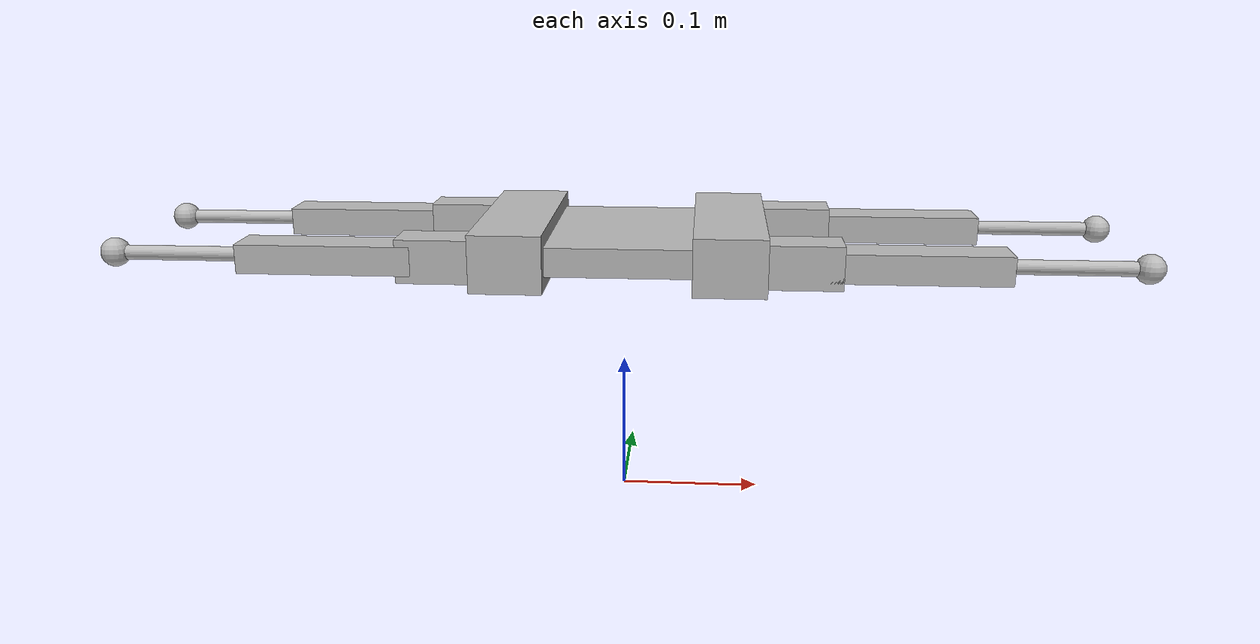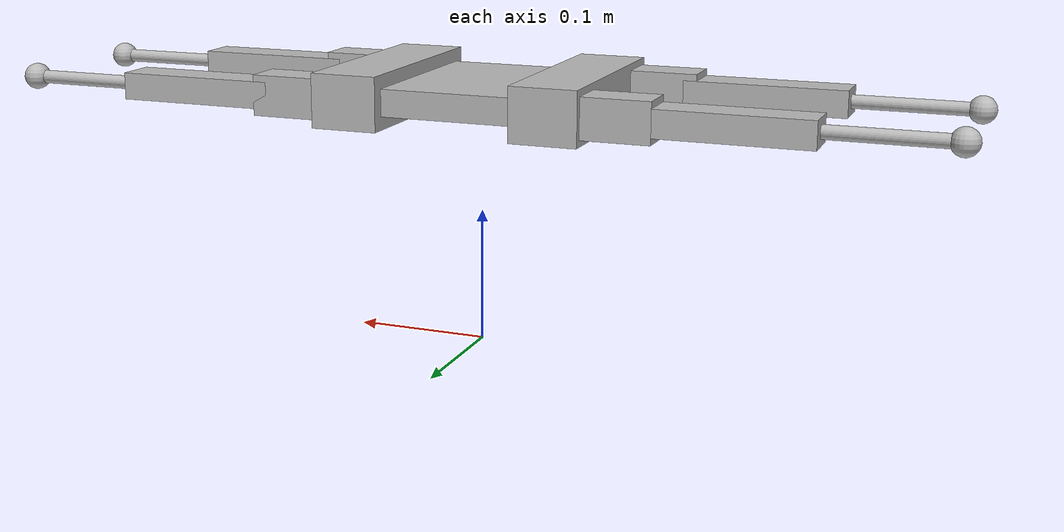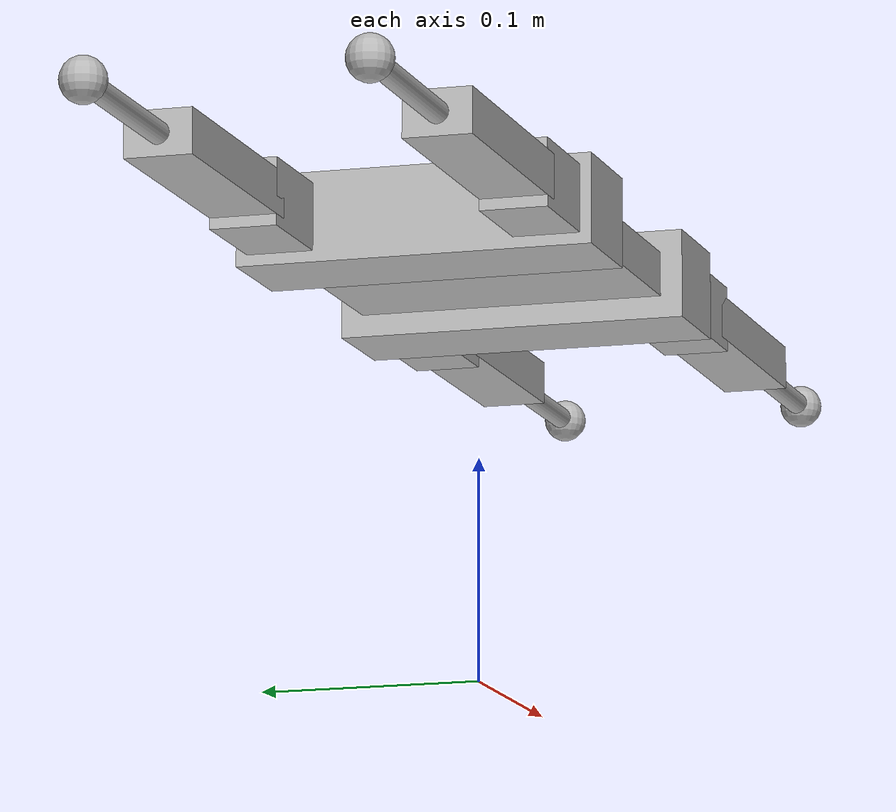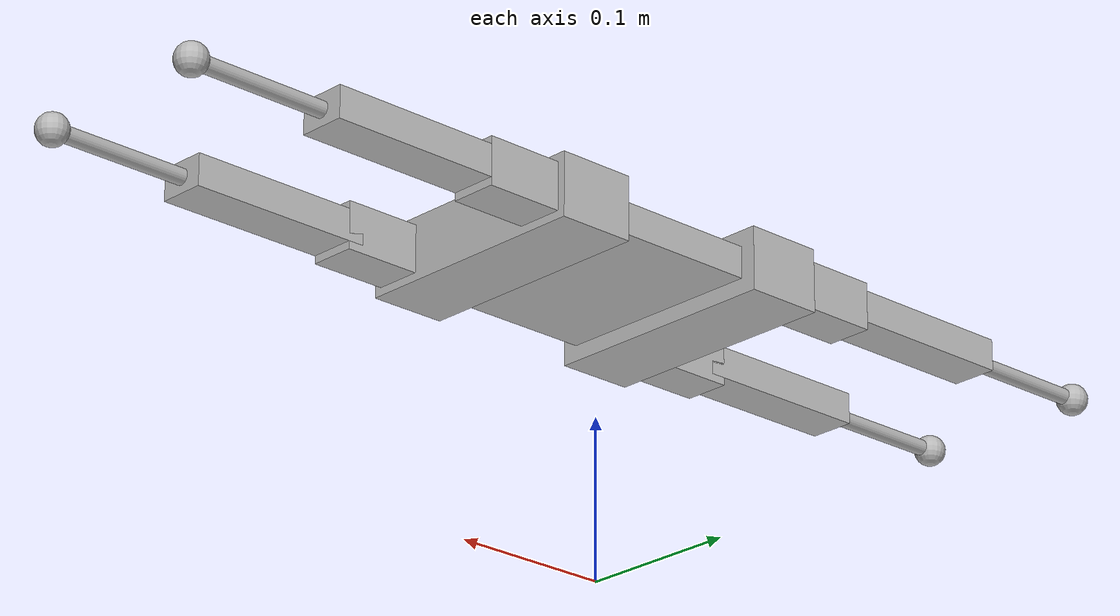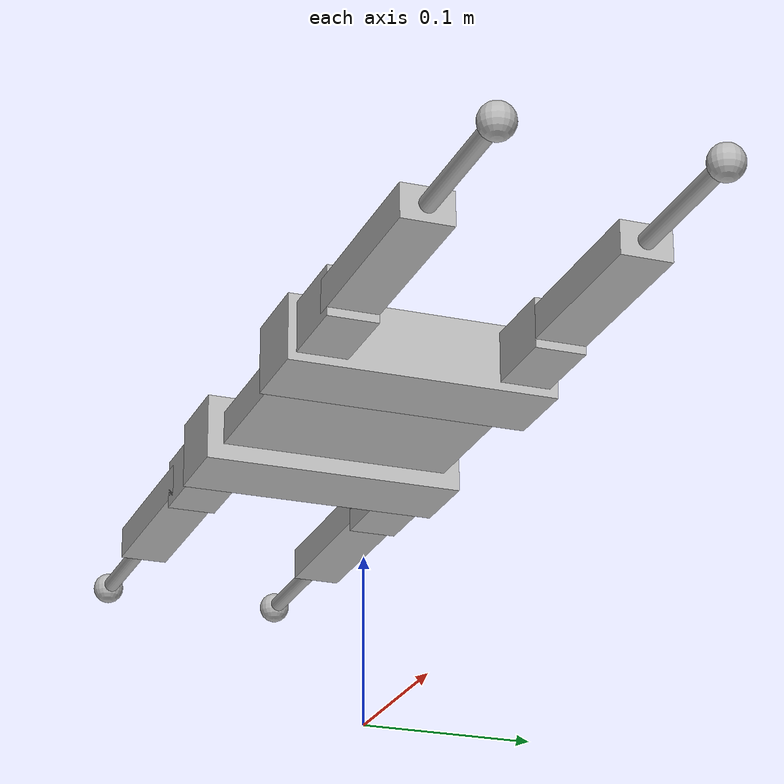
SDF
<?xml version="1.0" ?>
<sdf version='1.5'>
  <model name='ROBOT'>
  <plugin name="PacerPlugin" filename="/usr/local/lib/libPacerGazeboPlugin.so"/>
  <pose>0 0 0.19 0 -0 0</pose>
    <link name='BODY0'>
      <pose>0 0 0 0 -0 0</pose>
      <inertial>
        <mass>3.5</mass>
        <inertia>
          <ixx>0.01</ixx>
          <ixy>0.0</ixy>
          <ixz>-0.0</ixz>
          <iyy>0.01</iyy>
          <iyz>-0.0</iyz>
          <izz>0.01</izz>
        </inertia>
      </inertial>

      <visual name='BODY1_visual'>
      <pose>0.075 0 0 0 -0 0</pose>
        <geometry>
          <box>
            <size>0.05 0.16 0.04</size>
          </box>
        </geometry>
      </visual>
      <visual name='BODY0_visual'>
        <geometry>
          <box>
            <size>0.1 0.14 0.02</size>
          </box>
        </geometry>
      </visual>
      <visual name='BODYN_visual'>
      <pose>-0.075 0 0 0 -0 0</pose>
        <geometry>
          <box>
            <size>0.05 0.16 0.04</size>
          </box>
        </geometry>
      </visual>

      <collision name='BODY0_collision'>
        <geometry>
          <box>
            <size>0.1 0.14 0.02</size>
          </box>
        </geometry>
      </collision>

    </link>

<!-- =============================== LF leg =============================== -->
    <joint name='LF_X_1' type='revolute'>
      <pose>-0.025 0.0 0 0 0 0</pose>
      <parent>BODY0</parent>
      <child>LF_LEG_1</child>
      <axis>
        <xyz>1 0 0</xyz>
        <limit>
          <lower>-1e+16</lower>
          <upper>1e+16</upper>
        </limit>
        <dynamics/>
      </axis>
    </joint>

    <link name='LF_LEG_1'>
      <pose>0.125 0.06 0 0 0 0</pose>
      <inertial>
        <mass>0.10</mass>
        <inertia>
          <ixx>0.0001</ixx>
          <ixy>0.0</ixy>
          <ixz>-0.0</ixz>
          <iyy>0.0001</iyy>
          <iyz>-0.0</iyz>
          <izz>0.0001</izz>
        </inertia>
      </inertial>

      <visual name='leg1_visual'>
        <geometry>
          <box>
            <size>0.05 0.03 0.03</size>
          </box>
        </geometry>
      </visual>

    </link>

    <joint name='LF_Y_2' type='revolute'>
      <pose>-0.05 0 0 0 0 0</pose>
      <parent>LF_LEG_1</parent>
      <child>LF_LEG_2</child>
      <axis>
        <xyz>0 1 0</xyz>
        <limit>
          <lower>-1e+16</lower>
          <upper>1e+16</upper>
        </limit>
        <dynamics/>
      </axis>

    </joint>

    <link name='LF_LEG_2'>
      <pose>0.2 0.06 0 0 0 0</pose>
      <inertial>
        <mass>0.10</mass>
        <inertia>
          <ixx>0.0001</ixx>
          <ixy>0.0</ixy>
          <ixz>-0.0</ixz>
          <iyy>0.0001</iyy>
          <iyz>-0.0</iyz>
          <izz>0.0001</izz>
        </inertia>
      </inertial>

      <visual name='leg2_visual'>
        <geometry>
          <box>
            <size>0.12 0.03 0.02</size>
          </box>
        </geometry>
      </visual>

    </link>

    <joint name='LF_Y_3' type='revolute'>
      <pose>-0.05 0 0 0 0 0</pose>
      <parent>LF_LEG_2</parent>
      <child>LF_LEG_3</child>
      <axis>
        <xyz>0 1 0</xyz>
        <limit>
          <lower>-1e+16</lower>
          <upper>1e+16</upper>
        </limit>
        <dynamics/>
      </axis>

    </joint>

    <link name='LF_LEG_3'>
      <pose>0.3 0.06 0 0 0 0</pose>
      <inertial>
        <mass>0.10</mass>
        <inertia>
          <ixx>0.0001</ixx>
          <ixy>0.0</ixy>
          <ixz>-0.0</ixz>
          <iyy>0.0001</iyy>
          <iyz>-0.0</iyz>
          <izz>0.0001</izz>
        </inertia>
      </inertial>

      <visual name='leg3_visual'>
        <pose>0 0 0 0 1.5708 0</pose>
        <geometry>
          <cylinder>
            <length>0.1</length>
            <radius>0.005</radius>
          </cylinder>
        </geometry>
      </visual>
    </link>

    <joint name='LF_ANKLE4' type='revolute'>
      <pose>0 0 0 0 0 0</pose>
      <parent>LF_LEG_3</parent>
      <child>LF_FOOT</child>
      <axis>
        <xyz>1 0 0</xyz>
        <limit>
          <lower>0</lower>
          <upper>0</upper>
        </limit>
        <dynamics/>
      </axis>
    </joint>

    <link name='LF_FOOT'>
      <pose>0.35 0.06 0 0 0 0</pose>
      <inertial>
        <mass>0.01</mass>
        <inertia>
          <ixx>0.0001</ixx>
          <ixy>0.0</ixy>
          <ixz>-0.0</ixz>
          <iyy>0.0001</iyy>
          <iyz>-0.0</iyz>
          <izz>0.0001</izz>
        </inertia>
      </inertial>

      <visual name='LF_FOOT_visual'>
        <pose>0 0 0 0 0 0</pose>
        <geometry>
          <sphere>
            <radius>0.01</radius>
          </sphere>
        </geometry>
      </visual>

      <collision name='LF_FOOT_collision'>
        <pose>0 0 0 0 0 0</pose>
        <geometry>
          <sphere>
            <radius>0.01</radius>
          </sphere>
        </geometry>
      </collision>

      <sensor name='LF_FOOT_contact' type='contact'>
        <contact>
          <collision>LF_FOOT_collision</collision>
        </contact>
        <update_rate>1000</update_rate>
      </sensor>
    </link>

<!-- =============================== RF leg =============================== -->
    <joint name='RF_X_1' type='revolute'>
      <pose>-0.025 0 0 0 0 0</pose>
      <parent>BODY0</parent>
      <child>RF_LEG_1</child>
      <axis>
        <xyz>1 0 0</xyz>
        <limit>
          <lower>-1e+16</lower>
          <upper>1e+16</upper>
        </limit>
        <dynamics/>
      </axis>

    </joint>

    <link name='RF_LEG_1'>
      <pose>0.125 -0.06 0 0 0 0</pose>
      <inertial>
        <mass>0.10</mass>
        <inertia>
          <ixx>0.0001</ixx>
          <ixy>0.0</ixy>
          <ixz>-0.0</ixz>
          <iyy>0.0001</iyy>
          <iyz>-0.0</iyz>
          <izz>0.0001</izz>
        </inertia>
      </inertial>

      <visual name='leg1_visual'>
        <geometry>
          <box>
            <size>0.05 0.03 0.03</size>
          </box>
        </geometry>
      </visual>
    </link>

    <joint name='RF_Y_2' type='revolute'>
      <pose>-0.05 0 0 0 0 0</pose>
      <parent>RF_LEG_1</parent>
      <child>RF_LEG_2</child>
      <axis>
        <xyz>0 -1 0</xyz>
        <limit>
          <lower>-1e+16</lower>
          <upper>1e+16</upper>
        </limit>
        <dynamics/>
      </axis>
    </joint>

    <link name='RF_LEG_2'>
      <pose>0.2 -0.06 0 0 0 0</pose>
      <inertial>
        <mass>0.10</mass>
        <inertia>
          <ixx>0.0001</ixx>
          <ixy>0.0</ixy>
          <ixz>-0.0</ixz>
          <iyy>0.0001</iyy>
          <iyz>-0.0</iyz>
          <izz>0.0001</izz>
        </inertia>
      </inertial>

      <visual name='leg2_visual'>
        <geometry>
          <box>
            <size>0.12 0.03 0.02</size>
          </box>
        </geometry>
      </visual>
    </link>

    <joint name='RF_Y_3' type='revolute'>
      <pose>-0.05 0 0 0 0 0</pose>
      <parent>RF_LEG_2</parent>
      <child>RF_LEG_3</child>
      <axis>
        <xyz>0 -1 0</xyz>
        <limit>
          <lower>-1e+16</lower>
          <upper>1e+16</upper>
        </limit>
        <dynamics/>
      </axis>
    </joint>

    <link name='RF_LEG_3'>
      <pose>0.3 -0.06 0 0 0 0</pose>
      <inertial>
        <mass>0.10</mass>
        <inertia>
          <ixx>0.0001</ixx>
          <ixy>0.0</ixy>
          <ixz>-0.0</ixz>
          <iyy>0.0001</iyy>
          <iyz>-0.0</iyz>
          <izz>0.0001</izz>
        </inertia>
      </inertial>

      <visual name='leg3_visual'>
        <pose>0 0 0 0 1.5708 0</pose>
        <geometry>
          <cylinder>
            <length>0.1</length>
            <radius>0.005</radius>
          </cylinder>
        </geometry>
      </visual>
    </link>

    <joint name='RF_ANKLE4' type='revolute'>
      <pose>0 0 0 0 0 0</pose>
      <parent>RF_LEG_3</parent>
      <child>RF_FOOT</child>
      <axis>
        <xyz>1 0 0</xyz>
        <limit>
          <lower>0</lower>
          <upper>0</upper>
        </limit>
        <dynamics/>
      </axis>
    </joint>

    <link name='RF_FOOT'>
      <pose>0.35 -0.06 0 0 0 0</pose>
      <inertial>
        <mass>0.01</mass>
        <inertia>
          <ixx>0.0001</ixx>
          <ixy>0.0</ixy>
          <ixz>-0.0</ixz>
          <iyy>0.0001</iyy>
          <iyz>-0.0</iyz>
          <izz>0.0001</izz>
        </inertia>
      </inertial>

      <visual name='RF_FOOT_visual'>
        <pose>0 0 0 0 0 0</pose>
        <geometry>
          <sphere>
            <radius>0.01</radius>
          </sphere>
        </geometry>
      </visual>

      <collision name='RF_FOOT_collision'>
        <pose>0 0 0 0 0 0</pose>
        <geometry>
          <sphere>
            <radius>0.01</radius>
          </sphere>
        </geometry>
      </collision>

      <sensor name='RF_FOOT_contact' type='contact'>
        <contact>
          <collision>RF_FOOT_collision</collision>
        </contact>
        <update_rate>1000</update_rate>
      </sensor>
    </link>

<!-- =============================== LH leg =============================== -->
    <joint name='LH_X_1' type='revolute'>
      <pose>0.025 0 0 0 0 0</pose>
      <parent>BODY0</parent>
      <child>LH_LEG_1</child>
      <axis>
        <xyz>-1 0 0</xyz>
        <limit>
          <lower>-1e+16</lower>
          <upper>1e+16</upper>
        </limit>
        <dynamics/>
      </axis>

    </joint>

    <link name='LH_LEG_1'>
      <pose>-0.125 0.06 0 0 0 0</pose>
      <inertial>
        <mass>0.10</mass>
        <inertia>
          <ixx>0.0001</ixx>
          <ixy>0.0</ixy>
          <ixz>-0.0</ixz>
          <iyy>0.0001</iyy>
          <iyz>-0.0</iyz>
          <izz>0.0001</izz>
        </inertia>
      </inertial>

      <visual name='leg1_visual'>
        <geometry>
          <box>
            <size>0.05 0.03 0.03</size>
          </box>
        </geometry>
      </visual>
    </link>

    <joint name='LH_Y_2' type='revolute'>
      <pose>0.05 0 0 0 0 0</pose>
      <parent>LH_LEG_1</parent>
      <child>LH_LEG_2</child>
      <axis>
        <xyz>0 1 0</xyz>
        <limit>
          <lower>-1e+16</lower>
          <upper>1e+16</upper>
        </limit>
        <dynamics/>
      </axis>

    </joint>

    <link name='LH_LEG_2'>
      <pose>-0.2 0.06 0 0 0 0</pose>
      <inertial>
        <mass>0.10</mass>
        <inertia>
          <ixx>0.0001</ixx>
          <ixy>0.0</ixy>
          <ixz>-0.0</ixz>
          <iyy>0.0001</iyy>
          <iyz>-0.0</iyz>
          <izz>0.0001</izz>
        </inertia>
      </inertial>

      <visual name='leg2_visual'>
        <geometry>
          <box>
            <size>0.12 0.03 0.02</size>
          </box>
        </geometry>
      </visual>

    </link>

    <joint name='LH_Y_3' type='revolute'>
      <pose>0.05 0 0 0 0 0</pose>
      <parent>LH_LEG_2</parent>
      <child>LH_LEG_3</child>
      <axis>
        <xyz>0 1 0</xyz>
        <limit>
          <lower>-1e+16</lower>
          <upper>1e+16</upper>
        </limit>
        <dynamics/>
      </axis>

    </joint>

    <link name='LH_LEG_3'>
      <pose>-0.3 0.06 0 0 0 0</pose>
      <inertial>
        <mass>0.10</mass>
        <inertia>
          <ixx>0.0001</ixx>
          <ixy>0.0</ixy>
          <ixz>-0.0</ixz>
          <iyy>0.0001</iyy>
          <iyz>-0.0</iyz>
          <izz>0.0001</izz>
        </inertia>
      </inertial>

      <visual name='leg3_visual'>
        <pose>0 0 0 0 1.5708 0</pose>
        <geometry>
          <cylinder>
            <length>0.1</length>
            <radius>0.005</radius>
          </cylinder>
        </geometry>
      </visual>
    </link>
    <joint name='LH_ANKLE4' type='revolute'>
      <pose>0 0 0 0 0 0</pose>
      <parent>LH_LEG_3</parent>
      <child>LH_FOOT</child>
      <axis>
        <xyz>1 0 0</xyz>
        <limit>
          <lower>0</lower>
          <upper>0</upper>
        </limit>
        <dynamics/>
      </axis>
    </joint>

    <link name='LH_FOOT'>
      <pose>-0.35 0.06 0 0 0 0</pose>
      <inertial>
        <mass>0.01</mass>
        <inertia>
          <ixx>0.0001</ixx>
          <ixy>0.0</ixy>
          <ixz>-0.0</ixz>
          <iyy>0.0001</iyy>
          <iyz>-0.0</iyz>
          <izz>0.0001</izz>
        </inertia>
      </inertial>

      <visual name='LH_FOOT_visual'>
        <pose>0 0 0 0 0 0</pose>
        <geometry>
          <sphere>
            <radius>0.01</radius>
          </sphere>
        </geometry>
      </visual>

      <collision name='LH_FOOT_collision'>
        <pose>0 0 0 0 0 0</pose>
        <geometry>
          <sphere>
            <radius>0.01</radius>
          </sphere>
        </geometry>
      </collision>

      <sensor name='LH_FOOT_contact' type='contact'>
        <contact>
          <collision>LH_FOOT_collision</collision>
        </contact>
        <update_rate>1000</update_rate>
      </sensor>
    </link>

<!-- =============================== RH leg =============================== -->
    <joint name='RH_X_1' type='revolute'>
      <pose>0.025 0 0 0 0 0</pose>
      <parent>BODY0</parent>
      <child>RH_LEG_1</child>
      <axis>
        <xyz>-1 0 0</xyz>
        <limit>
          <lower>-1e+16</lower>
          <upper>1e+16</upper>
        </limit>
        <dynamics/>
      </axis>
    </joint>

    <link name='RH_LEG_1'>
      <pose>-0.125 -0.06 0 0 0 0</pose>
      <inertial>
        <mass>0.10</mass>
        <inertia>
          <ixx>0.0001</ixx>
          <ixy>0.0</ixy>
          <ixz>-0.0</ixz>
          <iyy>0.0001</iyy>
          <iyz>-0.0</iyz>
          <izz>0.0001</izz>
        </inertia>
      </inertial>

      <visual name='leg1_visual'>
        <geometry>
          <box>
            <size>0.05 0.03 0.03</size>
          </box>
        </geometry>
      </visual>
    </link>

    <joint name='RH_Y_2' type='revolute'>
      <pose>0.05 0 0 0 0 0</pose>
      <parent>RH_LEG_1</parent>
      <child>RH_LEG_2</child>
      <axis>
        <xyz>0 -1 0</xyz>
        <limit>
          <lower>-1e+16</lower>
          <upper>1e+16</upper>
        </limit>
        <dynamics/>
      </axis>

    </joint>

    <link name='RH_LEG_2'>
      <pose>-0.2 -0.06 0 0 0 0</pose>
      <inertial>
        <mass>0.10</mass>
        <inertia>
          <ixx>0.0001</ixx>
          <ixy>0.0</ixy>
          <ixz>-0.0</ixz>
          <iyy>0.0001</iyy>
          <iyz>-0.0</iyz>
          <izz>0.0001</izz>
        </inertia>
      </inertial>

      <visual name='leg2_visual'>
        <geometry>
          <box>
            <size>0.12 0.03 0.02</size>
          </box>
        </geometry>
      </visual>

    </link>

    <joint name='RH_Y_3' type='revolute'>
      <pose>0.05 0  0 0 0 0</pose>
      <parent>RH_LEG_2</parent>
      <child>RH_LEG_3</child>
      <axis>
        <xyz>0 -1 0</xyz>
        <limit>
          <lower>-1e+16</lower>
          <upper>1e+16</upper>
        </limit>
        <dynamics/>
      </axis>

    </joint>

    <link name='RH_LEG_3'>
      <pose>-0.3 -0.06 0 0 0 0</pose>
      <inertial>
        <mass>0.10</mass>
        <inertia>
          <ixx>0.0001</ixx>
          <ixy>0.0</ixy>
          <ixz>-0.0</ixz>
          <iyy>0.0001</iyy>
          <iyz>-0.0</iyz>
          <izz>0.0001</izz>
        </inertia>
      </inertial>

      <visual name='leg3_visual'>
        <pose>0 0 0 0 1.5708 0</pose>
        <geometry>
          <cylinder>
            <length>0.1</length>
            <radius>0.005</radius>
          </cylinder>
        </geometry>
      </visual>

    </link>

    <joint name='RH_ANKLE4' type='revolute'>
      <pose>0 0 0 0 0 0</pose>
      <parent>RH_LEG_3</parent>
      <child>RH_FOOT</child>
      <axis>
        <xyz>1 0 0</xyz>
        <limit>
          <lower>0</lower>
          <upper>0</upper>
        </limit>
        <dynamics/>
      </axis>
    </joint>

    <link name='RH_FOOT'>
      <pose>-0.35 -0.06 0 0 0 0</pose>
      <inertial>
        <mass>0.01</mass>
        <inertia>
          <ixx>0.0001</ixx>
          <ixy>0.0</ixy>
          <ixz>-0.0</ixz>
          <iyy>0.0001</iyy>
          <iyz>-0.0</iyz>
          <izz>0.0001</izz>
        </inertia>
      </inertial>

      <visual name='RH_FOOT_visual'>
        <pose>0 0 0 0 0 0</pose>
        <geometry>
          <sphere>
            <radius>0.01</radius>
          </sphere>
        </geometry>
      </visual>

      <collision name='RH_FOOT_collision'>
        <pose>0 0 0 0 0 0</pose>
        <geometry>
          <sphere>
            <radius>0.01</radius>
          </sphere>
        </geometry>
      </collision>

      <sensor name='RH_FOOT_contact' type='contact'>
        <contact>
          <collision>RH_FOOT_collision</collision>
        </contact>
        <update_rate>1000</update_rate>
      </sensor>
    </link>
  </model>
</sdf>
